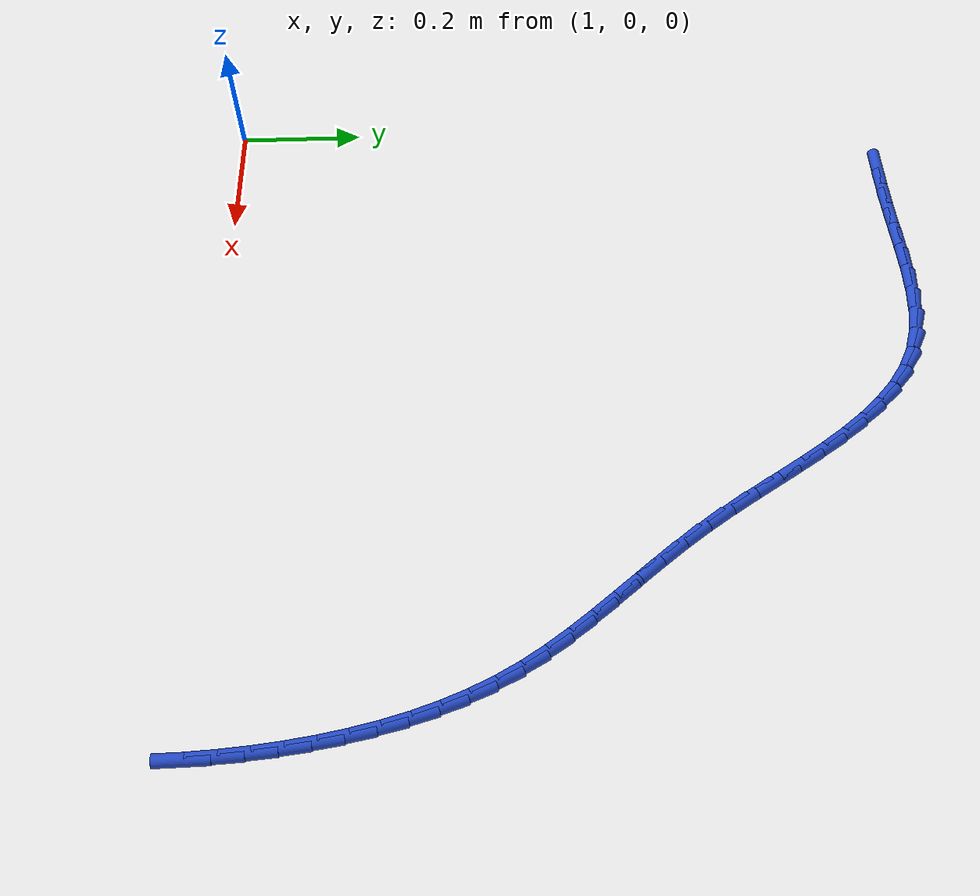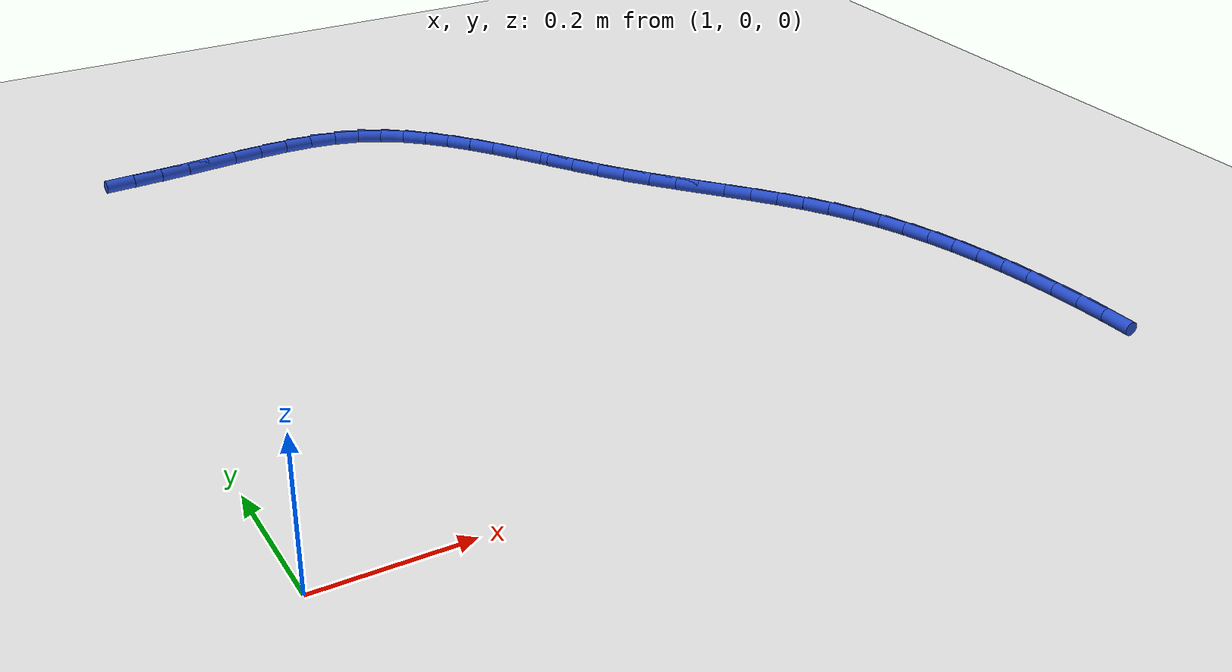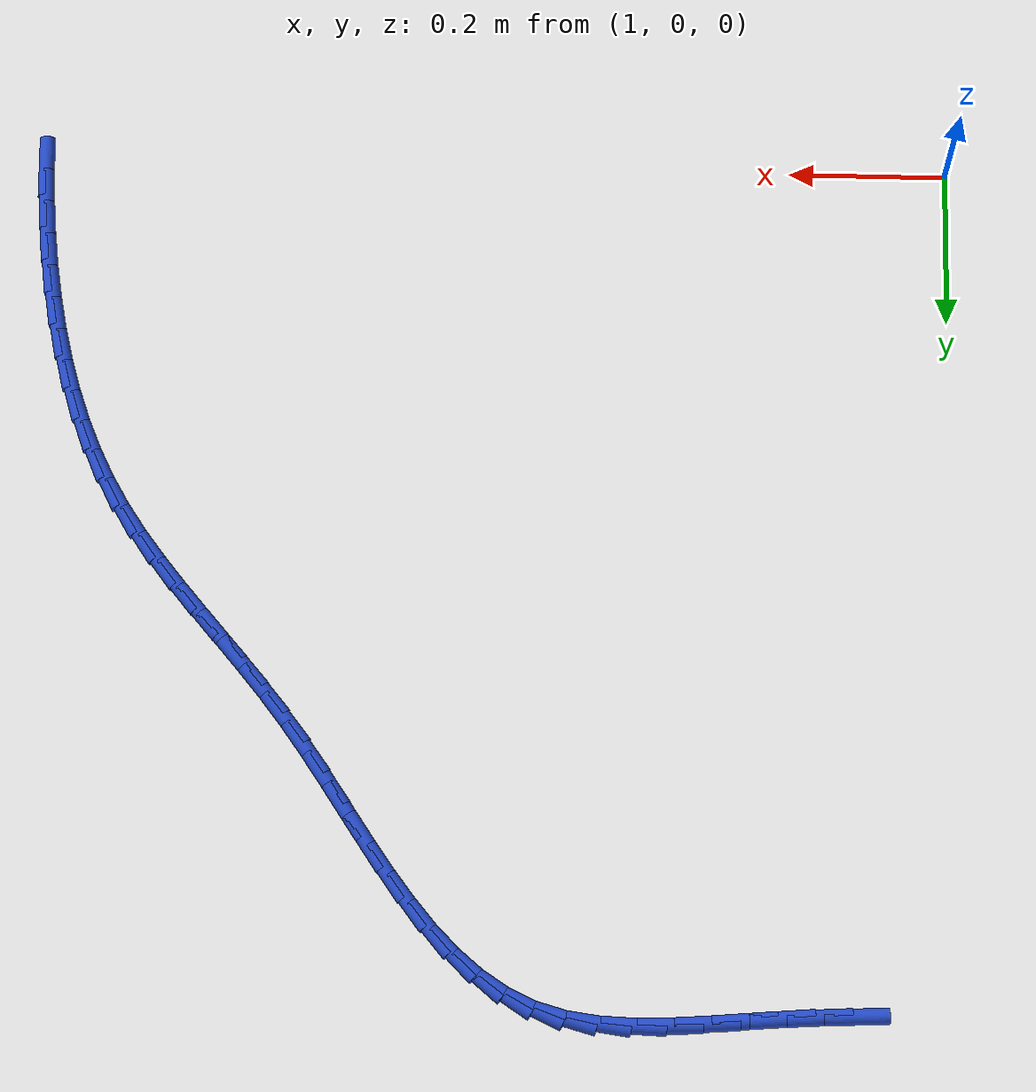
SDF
<sdf version="1.6">
 <world name="default">
  <model name="ground_plane">
   <static>1</static>
   <link name="link">
    <collision name="collision">
     <geometry><plane><normal>0 0 1</normal><size>100 100</size></plane></geometry>
     <surface><friction><ode><mu>100</mu><mu2>50</mu2></ode></friction></surface>
    </collision>
    <visual name="visual">
     <cast_shadows>0</cast_shadows>
     <geometry><plane><normal>0 0 1</normal><size>100 100</size></plane></geometry>
     <material>
      <script><uri>file://media/materials/scripts/gazebo.material</uri><name>Gazebo/WhiteGlow</name></script>
     </material>
    </visual>
   </link>
  </model>
  <model name="line">
   <link name="link_40">
    <pose>1.1176717795109252 1.0974014130804557 0.01 0 1.57 0.04754119221677851</pose>
    <collision name="collision">
     <geometry><cylinder><radius>0.01</radius><length>0.08</length></cylinder></geometry>
    </collision>
    <visual name="visual">
     <material>
      <script><name>Gazebo/Blue</name><uri>file://media/materials/scripts/gazebo.material</uri></script>
     </material>
     <geometry><cylinder><radius>0.01</radius><length>0.08</length></cylinder></geometry>
    </visual>
   </link>
   <link name="link_41">
    <pose>1.1621982531742834 1.0995198509705162 0.01 0 1.57 0.06360633839593538</pose>
    <collision name="collision">
     <geometry><cylinder><radius>0.01</radius><length>0.08</length></cylinder></geometry>
    </collision>
    <visual name="visual">
     <material>
      <script><name>Gazebo/Blue</name><uri>file://media/materials/scripts/gazebo.material</uri></script>
     </material>
     <geometry><cylinder><radius>0.01</radius><length>0.08</length></cylinder></geometry>
    </visual>
   </link>
   <link name="link_42">
    <pose>1.2071727962758887 1.1023843810937113 0.01 0 1.57 0.08432819635410684</pose>
    <collision name="collision">
     <geometry><cylinder><radius>0.01</radius><length>0.08</length></cylinder></geometry>
    </collision>
    <visual name="visual">
     <material>
      <script><name>Gazebo/Blue</name><uri>file://media/materials/scripts/gazebo.material</uri></script>
     </material>
     <geometry><cylinder><radius>0.01</radius><length>0.08</length></cylinder></geometry>
    </visual>
   </link>
   <link name="link_43">
    <pose>1.2524979456584102 1.1062156552082691 0.01 0 1.57 0.08867296946116272</pose>
    <collision name="collision">
     <geometry><cylinder><radius>0.01</radius><length>0.08</length></cylinder></geometry>
    </collision>
    <visual name="visual">
     <material>
      <script><name>Gazebo/Blue</name><uri>file://media/materials/scripts/gazebo.material</uri></script>
     </material>
     <geometry><cylinder><radius>0.01</radius><length>0.08</length></cylinder></geometry>
    </visual>
   </link>
   <link name="link_44">
    <pose>1.2977871826588578 1.110242145163771 0.01 0 1.57 0.07045001302064229</pose>
    <collision name="collision">
     <geometry><cylinder><radius>0.01</radius><length>0.08</length></cylinder></geometry>
    </collision>
    <visual name="visual">
     <material>
      <script><name>Gazebo/Blue</name><uri>file://media/materials/scripts/gazebo.material</uri></script>
     </material>
     <geometry><cylinder><radius>0.01</radius><length>0.08</length></cylinder></geometry>
    </visual>
   </link>
   <link name="link_45">
    <pose>1.3425694920671825 1.1134022893224529 0.01 0 1.57 0.028122232472044078</pose>
    <collision name="collision">
     <geometry><cylinder><radius>0.01</radius><length>0.08</length></cylinder></geometry>
    </collision>
    <visual name="visual">
     <material>
      <script><name>Gazebo/Blue</name><uri>file://media/materials/scripts/gazebo.material</uri></script>
     </material>
     <geometry><cylinder><radius>0.01</radius><length>0.08</length></cylinder></geometry>
    </visual>
   </link>
   <link name="link_46">
    <pose>1.386373848306317 1.1146344904618735 0.01 0 1.57 -0.04146655883906525</pose>
    <collision name="collision">
     <geometry><cylinder><radius>0.01</radius><length>0.08</length></cylinder></geometry>
    </collision>
    <visual name="visual">
     <material>
      <script><name>Gazebo/Blue</name><uri>file://media/materials/scripts/gazebo.material</uri></script>
     </material>
     <geometry><cylinder><radius>0.01</radius><length>0.08</length></cylinder></geometry>
    </visual>
   </link>
   <link name="link_47">
    <pose>1.428729225799194 1.1128771513595894 0.01 0 1.57 -0.1426723983109633</pose>
    <collision name="collision">
     <geometry><cylinder><radius>0.01</radius><length>0.08</length></cylinder></geometry>
    </collision>
    <visual name="visual">
     <material>
      <script><name>Gazebo/Blue</name><uri>file://media/materials/scripts/gazebo.material</uri></script>
     </material>
     <geometry><cylinder><radius>0.01</radius><length>0.08</length></cylinder></geometry>
    </visual>
   </link>
   <link name="link_48">
    <pose>1.4691645989687465 1.1070686747931584 0.01 0 1.57 -0.27953695806055684</pose>
    <collision name="collision">
     <geometry><cylinder><radius>0.01</radius><length>0.08</length></cylinder></geometry>
    </collision>
    <visual name="visual">
     <material>
      <script><name>Gazebo/Blue</name><uri>file://media/materials/scripts/gazebo.material</uri></script>
     </material>
     <geometry><cylinder><radius>0.01</radius><length>0.08</length></cylinder></geometry>
    </visual>
   </link>
   <link name="link_49">
    <pose>1.5072091318293646 1.0961478751152383 0.01 0 1.57 -0.4408919122192127</pose>
    <collision name="collision">
     <geometry><cylinder><radius>0.01</radius><length>0.08</length></cylinder></geometry>
    </collision>
    <visual name="visual">
     <material>
      <script><name>Gazebo/Blue</name><uri>file://media/materials/scripts/gazebo.material</uri></script>
     </material>
     <geometry><cylinder><radius>0.01</radius><length>0.08</length></cylinder></geometry>
    </visual>
   </link>
   <link name="link_50">
    <pose>1.542578369498026 1.0794581725696317 0.01 0 1.57 -0.5877917946363949</pose>
    <collision name="collision">
     <geometry><cylinder><radius>0.01</radius><length>0.08</length></cylinder></geometry>
    </collision>
    <visual name="visual">
     <material>
      <script><name>Gazebo/Blue</name><uri>file://media/materials/scripts/gazebo.material</uri></script>
     </material>
     <geometry><cylinder><radius>0.01</radius><length>0.08</length></cylinder></geometry>
    </visual>
   </link>
   <link name="link_51">
    <pose>1.5755231452521419 1.0575050190662665 0.01 0 1.57 -0.7094978005479948</pose>
    <collision name="collision">
     <geometry><cylinder><radius>0.01</radius><length>0.08</length></cylinder></geometry>
    </collision>
    <visual name="visual">
     <material>
      <script><name>Gazebo/Blue</name><uri>file://media/materials/scripts/gazebo.material</uri></script>
     </material>
     <geometry><cylinder><radius>0.01</radius><length>0.08</length></cylinder></geometry>
    </visual>
   </link>
   <link name="link_52">
    <pose>1.606389795622737 1.031001189996367 0.01 0 1.57 -0.8056868536598677</pose>
    <collision name="collision">
     <geometry><cylinder><radius>0.01</radius><length>0.08</length></cylinder></geometry>
    </collision>
    <visual name="visual">
     <material>
      <script><name>Gazebo/Blue</name><uri>file://media/materials/scripts/gazebo.material</uri></script>
     </material>
     <geometry><cylinder><radius>0.01</radius><length>0.08</length></cylinder></geometry>
    </visual>
   </link>
   <link name="link_53">
    <pose>1.635524657140838 1.000659460751156 0.01 0 1.57 -0.8785254862672629</pose>
    <collision name="collision">
     <geometry><cylinder><radius>0.01</radius><length>0.08</length></cylinder></geometry>
    </collision>
    <visual name="visual">
     <material>
      <script><name>Gazebo/Blue</name><uri>file://media/materials/scripts/gazebo.material</uri></script>
     </material>
     <geometry><cylinder><radius>0.01</radius><length>0.08</length></cylinder></geometry>
    </visual>
   </link>
   <link name="link_54">
    <pose>1.66327406633747 0.9671926067218594 0.01 0 1.57 -0.9308563245846678</pose>
    <collision name="collision">
     <geometry><cylinder><radius>0.01</radius><length>0.08</length></cylinder></geometry>
    </collision>
    <visual name="visual">
     <material>
      <script><name>Gazebo/Blue</name><uri>file://media/materials/scripts/gazebo.material</uri></script>
     </material>
     <geometry><cylinder><radius>0.01</radius><length>0.08</length></cylinder></geometry>
    </visual>
   </link>
   <link name="link_55">
    <pose>1.6899843597436586 0.9313134032996994 0.01 0 1.57 -0.9652258052043879</pose>
    <collision name="collision">
     <geometry><cylinder><radius>0.01</radius><length>0.08</length></cylinder></geometry>
    </collision>
    <visual name="visual">
     <material>
      <script><name>Gazebo/Blue</name><uri>file://media/materials/scripts/gazebo.material</uri></script>
     </material>
     <geometry><cylinder><radius>0.01</radius><length>0.08</length></cylinder></geometry>
    </visual>
   </link>
   <link name="link_56">
    <pose>1.7160018738904295 0.8937346258758999 0.01 0 1.57 -0.9834997732405544</pose>
    <collision name="collision">
     <geometry><cylinder><radius>0.01</radius><length>0.08</length></cylinder></geometry>
    </collision>
    <visual name="visual">
     <material>
      <script><name>Gazebo/Blue</name><uri>file://media/materials/scripts/gazebo.material</uri></script>
     </material>
     <geometry><cylinder><radius>0.01</radius><length>0.08</length></cylinder></geometry>
    </visual>
   </link>
   <link name="link_57">
    <pose>1.741672945308808 0.8551690498416857 0.01 0 1.57 -0.9867630813665804</pose>
    <collision name="collision">
     <geometry><cylinder><radius>0.01</radius><length>0.08</length></cylinder></geometry>
    </collision>
    <visual name="visual">
     <material>
      <script><name>Gazebo/Blue</name><uri>file://media/materials/scripts/gazebo.material</uri></script>
     </material>
     <geometry><cylinder><radius>0.01</radius><length>0.08</length></cylinder></geometry>
    </visual>
   </link>
   <link name="link_58">
    <pose>1.76734391052982 0.8163294505882798 0.01 0 1.57 -0.9753200796416297</pose>
    <collision name="collision">
     <geometry><cylinder><radius>0.01</radius><length>0.08</length></cylinder></geometry>
    </collision>
    <visual name="visual">
     <material>
      <script><name>Gazebo/Blue</name><uri>file://media/materials/scripts/gazebo.material</uri></script>
     </material>
     <geometry><cylinder><radius>0.01</radius><length>0.08</length></cylinder></geometry>
    </visual>
   </link>
   <link name="link_59">
    <pose>1.7933611060844912 0.7779286035069068 0.01 0 1.57 -0.9487179046697646</pose>
    <collision name="collision">
     <geometry><cylinder><radius>0.01</radius><length>0.08</length></cylinder></geometry>
    </collision>
    <visual name="visual">
     <material>
      <script><name>Gazebo/Blue</name><uri>file://media/materials/scripts/gazebo.material</uri></script>
     </material>
     <geometry><cylinder><radius>0.01</radius><length>0.08</length></cylinder></geometry>
    </visual>
   </link>
   <link name="link_60">
    <pose>1.8200708271165047 0.7406792220331275 0.01 0 1.57 -0.9115690121381403</pose>
    <collision name="collision">
     <geometry><cylinder><radius>0.01</radius><length>0.08</length></cylinder></geometry>
    </collision>
    <visual name="visual">
     <material>
      <script><name>Gazebo/Blue</name><uri>file://media/materials/scripts/gazebo.material</uri></script>
     </material>
     <geometry><cylinder><radius>0.01</radius><length>0.08</length></cylinder></geometry>
    </visual>
   </link>
   <link name="link_61">
    <pose>1.847666728279961 0.7050655211732701 0.01 0 1.57 -0.8821551987293187</pose>
    <collision name="collision">
     <geometry><cylinder><radius>0.01</radius><length>0.08</length></cylinder></geometry>
    </collision>
    <visual name="visual">
     <material>
      <script><name>Gazebo/Blue</name><uri>file://media/materials/scripts/gazebo.material</uri></script>
     </material>
     <geometry><cylinder><radius>0.01</radius><length>0.08</length></cylinder></geometry>
    </visual>
   </link>
   <link name="link_62">
    <pose>1.875845834993603 0.6708282762309931 0.01 0 1.57 -0.8649394055414887</pose>
    <collision name="collision">
     <geometry><cylinder><radius>0.01</radius><length>0.08</length></cylinder></geometry>
    </collision>
    <visual name="visual">
     <material>
      <script><name>Gazebo/Blue</name><uri>file://media/materials/scripts/gazebo.material</uri></script>
     </material>
     <geometry><cylinder><radius>0.01</radius><length>0.08</length></cylinder></geometry>
    </visual>
   </link>
   <link name="link_63">
    <pose>1.9042043416007546 0.6375573212858164 0.01 0 1.57 -0.8605368058862686</pose>
    <collision name="collision">
     <geometry><cylinder><radius>0.01</radius><length>0.08</length></cylinder></geometry>
    </collision>
    <visual name="visual">
     <material>
      <script><name>Gazebo/Blue</name><uri>file://media/materials/scripts/gazebo.material</uri></script>
     </material>
     <geometry><cylinder><radius>0.01</radius><length>0.08</length></cylinder></geometry>
    </visual>
   </link>
   <link name="link_64">
    <pose>1.9323384424447432 0.6048424904172628 0.01 0 1.57 -0.8694775144684911</pose>
    <collision name="collision">
     <geometry><cylinder><radius>0.01</radius><length>0.08</length></cylinder></geometry>
    </collision>
    <visual name="visual">
     <material>
      <script><name>Gazebo/Blue</name><uri>file://media/materials/scripts/gazebo.material</uri></script>
     </material>
     <geometry><cylinder><radius>0.01</radius><length>0.08</length></cylinder></geometry>
    </visual>
   </link>
   <link name="link_65">
    <pose>1.9598443318688947 0.5722736177048531 0.01 0 1.57 -0.8922153812034631</pose>
    <collision name="collision">
     <geometry><cylinder><radius>0.01</radius><length>0.08</length></cylinder></geometry>
    </collision>
    <visual name="visual">
     <material>
      <script><name>Gazebo/Blue</name><uri>file://media/materials/scripts/gazebo.material</uri></script>
     </material>
     <geometry><cylinder><radius>0.01</radius><length>0.08</length></cylinder></geometry>
    </visual>
   </link>
   <link name="link_66">
    <pose>1.9863182042165342 0.5394405372281084 0.01 0 1.57 -0.9290651167384616</pose>
    <collision name="collision">
     <geometry><cylinder><radius>0.01</radius><length>0.08</length></cylinder></geometry>
    </collision>
    <visual name="visual">
     <material>
      <script><name>Gazebo/Blue</name><uri>file://media/materials/scripts/gazebo.material</uri></script>
     </material>
     <geometry><cylinder><radius>0.01</radius><length>0.08</length></cylinder></geometry>
    </visual>
   </link>
   <link name="link_67">
    <pose>2.011356253830988 0.5059330830665507 0.01 0 1.57 -0.9800550445598464</pose>
    <collision name="collision">
     <geometry><cylinder><radius>0.01</radius><length>0.08</length></cylinder></geometry>
    </collision>
    <visual name="visual">
     <material>
      <script><name>Gazebo/Blue</name><uri>file://media/materials/scripts/gazebo.material</uri></script>
     </material>
     <geometry><cylinder><radius>0.01</radius><length>0.08</length></cylinder></geometry>
    </visual>
   </link>
   <link name="link_68">
    <pose>2.034554675055582 0.4713410892997009 0.01 0 1.57 -1.0444371889498945</pose>
    <collision name="collision">
     <geometry><cylinder><radius>0.01</radius><length>0.08</length></cylinder></geometry>
    </collision>
    <visual name="visual">
     <material>
      <script><name>Gazebo/Blue</name><uri>file://media/materials/scripts/gazebo.material</uri></script>
     </material>
     <geometry><cylinder><radius>0.01</radius><length>0.08</length></cylinder></geometry>
    </visual>
   </link>
   <link name="link_69">
    <pose>2.055517346094511 0.43526303548655887 0.01 0 1.57 -1.1132340284326134</pose>
    <collision name="collision">
     <geometry><cylinder><radius>0.01</radius><length>0.08</length></cylinder></geometry>
    </collision>
    <visual name="visual">
     <material>
      <script><name>Gazebo/Blue</name><uri>file://media/materials/scripts/gazebo.material</uri></script>
     </material>
     <geometry><cylinder><radius>0.01</radius><length>0.08</length></cylinder></geometry>
    </visual>
   </link>
   <link name="link_70">
    <pose>2.0740824373513442 0.39756101454874704 0.01 0 1.57 -1.1768475800381455</pose>
    <collision name="collision">
     <geometry><cylinder><radius>0.01</radius><length>0.08</length></cylinder></geometry>
    </collision>
    <visual name="visual">
     <material>
      <script><name>Gazebo/Blue</name><uri>file://media/materials/scripts/gazebo.material</uri></script>
     </material>
     <geometry><cylinder><radius>0.01</radius><length>0.08</length></cylinder></geometry>
    </visual>
   </link>
   <link name="link_71">
    <pose>2.0903597052566827 0.35840269384023615 0.01 0 1.57 -1.234916211165615</pose>
    <collision name="collision">
     <geometry><cylinder><radius>0.01</radius><length>0.08</length></cylinder></geometry>
    </collision>
    <visual name="visual">
     <material>
      <script><name>Gazebo/Blue</name><uri>file://media/materials/scripts/gazebo.material</uri></script>
     </material>
     <geometry><cylinder><radius>0.01</radius><length>0.08</length></cylinder></geometry>
    </visual>
   </link>
   <link name="link_72">
    <pose>2.1044740999191043 0.3179728358489908 0.01 0 1.57 -1.2877248448143674</pose>
    <collision name="collision">
     <geometry><cylinder><radius>0.01</radius><length>0.08</length></cylinder></geometry>
    </collision>
    <visual name="visual">
     <material>
      <script><name>Gazebo/Blue</name><uri>file://media/materials/scripts/gazebo.material</uri></script>
     </material>
     <geometry><cylinder><radius>0.01</radius><length>0.08</length></cylinder></geometry>
    </visual>
   </link>
   <link name="link_73">
    <pose>2.1165505714471866 0.276456203062974 0.01 0 1.57 -1.3356297927896514</pose>
    <collision name="collision">
     <geometry><cylinder><radius>0.01</radius><length>0.08</length></cylinder></geometry>
    </collision>
    <visual name="visual">
     <material>
      <script><name>Gazebo/Blue</name><uri>file://media/materials/scripts/gazebo.material</uri></script>
     </material>
     <geometry><cylinder><radius>0.01</radius><length>0.08</length></cylinder></geometry>
    </visual>
   </link>
   <link name="link_74">
    <pose>2.126714069949507 0.2340375579701506 0.01 0 1.57 -1.3790177093501597</pose>
    <collision name="collision">
     <geometry><cylinder><radius>0.01</radius><length>0.08</length></cylinder></geometry>
    </collision>
    <visual name="visual">
     <material>
      <script><name>Gazebo/Blue</name><uri>file://media/materials/scripts/gazebo.material</uri></script>
     </material>
     <geometry><cylinder><radius>0.01</radius><length>0.08</length></cylinder></geometry>
    </visual>
   </link>
   <link name="link_75">
    <pose>2.1350895455346417 0.19090166305848405 0.01 0 1.57 -1.418276970176401</pose>
    <collision name="collision">
     <geometry><cylinder><radius>0.01</radius><length>0.08</length></cylinder></geometry>
    </collision>
    <visual name="visual">
     <material>
      <script><name>Gazebo/Blue</name><uri>file://media/materials/scripts/gazebo.material</uri></script>
     </material>
     <geometry><cylinder><radius>0.01</radius><length>0.08</length></cylinder></geometry>
    </visual>
   </link>
   <link name="link_76">
    <pose>2.1418019483111697 0.14723328081593776 0.01 0 1.57 -1.4537791335347714</pose>
    <collision name="collision">
     <geometry><cylinder><radius>0.01</radius><length>0.08</length></cylinder></geometry>
    </collision>
    <visual name="visual">
     <material>
      <script><name>Gazebo/Blue</name><uri>file://media/materials/scripts/gazebo.material</uri></script>
     </material>
     <geometry><cylinder><radius>0.01</radius><length>0.08</length></cylinder></geometry>
    </visual>
   </link>
   <link name="link_77">
    <pose>2.1469762283876674 0.10321717373047656 0.01 0 1.57 -1.486125176290463</pose>
    <collision name="collision">
     <geometry><cylinder><radius>0.01</radius><length>0.08</length></cylinder></geometry>
    </collision>
    <visual name="visual">
     <material>
      <script><name>Gazebo/Blue</name><uri>file://media/materials/scripts/gazebo.material</uri></script>
     </material>
     <geometry><cylinder><radius>0.01</radius><length>0.08</length></cylinder></geometry>
    </visual>
   </link>
   <link name="link_78">
    <pose>2.1507264294702257 0.05903170100693177 0.01 0 1.57 -1.518012006115695</pose>
    <collision name="collision">
     <geometry><cylinder><radius>0.01</radius><length>0.08</length></cylinder></geometry>
    </collision>
    <visual name="visual">
     <material>
      <script><name>Gazebo/Blue</name><uri>file://media/materials/scripts/gazebo.material</uri></script>
     </material>
     <geometry><cylinder><radius>0.01</radius><length>0.08</length></cylinder></geometry>
    </visual>
   </link>
   <link name="link_79">
    <pose>2.153063617250014 0.014794762190166686 0.01 0 1.57 -1.550922824705998</pose>
    <collision name="collision">
     <geometry><cylinder><radius>0.01</radius><length>0.08</length></cylinder></geometry>
    </collision>
    <visual name="visual">
     <material>
      <script><name>Gazebo/Blue</name><uri>file://media/materials/scripts/gazebo.material</uri></script>
     </material>
     <geometry><cylinder><radius>0.01</radius><length>0.08</length></cylinder></geometry>
    </visual>
   </link>
  </model>
 </world>
</sdf>
